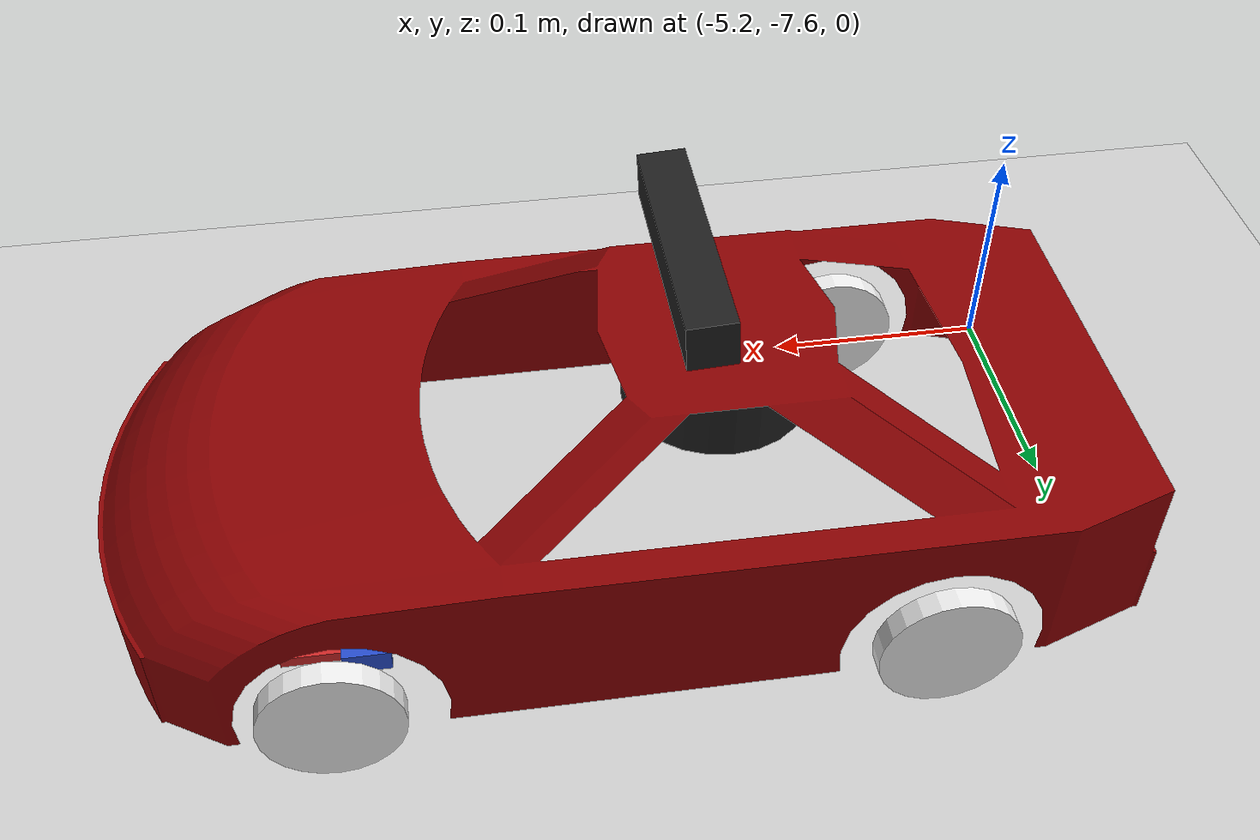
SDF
<?xml version="1.0" ?>
<sdf version="1.5">
  <world name="default">
    <!-- A global light source -->
    <include>
      <uri>model://sun</uri>
    </include>
    <!-- A ground plane -->
    <include>
      <uri>model://ground_plane</uri>
      <pose> 0 0 -0.05 0 0 0 </pose>
    </include>

    <include>
      <uri>model://AutoNOMOS_mini_ideal</uri>
      <pose> -5 -7.5 0 0 0 0 </pose>
    </include>

  </world>
</sdf>

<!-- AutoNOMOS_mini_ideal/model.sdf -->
<sdf version='1.3'>
  <model name='AutoNOMOS_mini_ideal'>
    <static>true</static>
    <link name='base_link'>
    </link>

    <link name="body">
      	<inertial>
	        <mass>6</mass>
	        <inertia>
	          <ixx>0.0067</ixx>
	          <ixy>0.000000</ixy>
	          <ixz>0.00088</ixz>
	          <iyy>0.07846</iyy>
	          <iyz>0.000000</iyz>
	          <izz>0.08387</izz>
	        </inertia>
      	</inertial>

	    <visual name="visual_body">
	      	<geometry>
				<mesh><uri>model://AutoNOMOS_mini/meshes/autonomos.dae</uri></mesh>
	      	</geometry>
	    </visual>

	    <collision name="collision_body">
	    	<geometry>
				<mesh><uri>model://AutoNOMOS_mini/meshes/autonomos.dae</uri></mesh>
	      	</geometry>
	    </collision>

	    <sensor name="imu_sensor" type="imu">
	      <always_on>true</always_on>
	      <update_rate>50</update_rate>
	      <visualize>true</visualize>
	      <topic>__default_topic__</topic>
	      <plugin filename="libgazebo_ros_imu_sensor.so" name="imu_plugin">
	        <topicName>imu</topicName>
	        <updateRateHZ>10.0</updateRateHZ>
	        <gaussianNoise>0.0</gaussianNoise>
	        <xyzOffset>0 0 0</xyzOffset>
	        <rpyOffset>0 0 0</rpyOffset>
	        <frameName>imu_link</frameName>
	      </plugin>
	      <pose>0 0 0 0 0 0</pose>
	    </sensor>
    </link>

    <joint name="base_link_to_body" type="fixed">
    	<pose>0.000000 0.000000 0.000000 0.000000 0.000000 0.000000</pose>
    	<parent>base_link</parent>
		<child>body </child>
    </joint>

    <link name='back_left_wheel_link'>
      <pose>-0.125000 0.100000 0.0100000 1.570800 0.000000 0.000000</pose>
      <inertial>
        <mass>0.010000</mass>
        <inertia>
          <ixx>0.010000</ixx>
          <ixy>0.000000</ixy>
          <ixz>0.000000</ixz>
          <iyy>0.010000</iyy>
          <iyz>0.000000</iyz>
          <izz>0.010000</izz>
        </inertia>
      </inertial>
      <collision name='back_left_wheel_link_geom'>
        <geometry>
          <cylinder>
            <length>0.01000</length>
            <radius>0.03000</radius>
          </cylinder>
        </geometry>
      </collision>
      <visual name='back_left_wheel_link_visual'>
        <geometry>
          <cylinder>
            <length>0.01000</length>
            <radius>0.03000</radius>
          </cylinder>
        </geometry>
        <material>
          <script>
            <name>Gazebo/White</name>
          </script>
        </material>
      </visual>
    </link>

    <joint name='back_left_wheel_joint' type='revolute'>
      <child>back_left_wheel_link</child>
      <parent>base_link</parent>
      <axis>
        <xyz>0.000000 1.000000 0.000000</xyz>
        <limit>
          <lower>-10000000000000000.000000</lower>
          <upper>10000000000000000.000000</upper>
        </limit>
      </axis>
    </joint>

    <link name='back_right_wheel_link'>
      <pose>-0.125000 -0.100000 0.0100000 1.570800 0.000000 0.000000</pose>
      <inertial>
        <mass>0.010000</mass>
        <inertia>
          <ixx>0.010000</ixx>
          <ixy>0.000000</ixy>
          <ixz>0.000000</ixz>
          <iyy>0.010000</iyy>
          <iyz>0.000000</iyz>
          <izz>0.010000</izz>
        </inertia>
      </inertial>
      <collision name='back_right_wheel_link_geom'>
        <geometry>
          <cylinder>
            <length>0.01000</length>
            <radius>0.030000</radius>
          </cylinder>
        </geometry>
      </collision>
      <visual name='back_right_wheel_link_visual'>
        <geometry>
          <cylinder>
            <length>0.01000</length>
            <radius>0.030000</radius>
          </cylinder>
        </geometry>
        <material>
          <script>
            <name>Gazebo/White</name>
          </script>
        </material>
      </visual>
    </link>

    <joint name='back_right_wheel_joint' type='revolute'>
      <child>back_right_wheel_link</child>
      <parent>base_link</parent>
      <axis>
        <xyz>0.000000 1.000000 0.000000</xyz>
        <limit>
          <lower>-10000000000000000.000000</lower>
          <upper>10000000000000000.000000</upper>
        </limit>
      </axis>
    </joint>

    <link name='front_left_bar_link'>
      <pose>0.125000 0.060000 0.0100000 0.000000 0.000000 0.000000</pose>
      <inertial>
        <mass>0.010000</mass>
        <inertia>
          <ixx>0.010000</ixx>
          <ixy>0.000000</ixy>
          <ixz>0.000000</ixz>
          <iyy>0.010000</iyy>
          <iyz>0.000000</iyz>
          <izz>0.010000</izz>
        </inertia>
      </inertial>
      <collision name='front_left_bar_link_geom'>
        <geometry>
          <box>
            <size>0.040000 0.020000 0.005000</size>
          </box>
        </geometry>
      </collision>
      <visual name='front_left_bar_link_visual'>
        <geometry>
          <box>
            <size>0.040000 0.020000 0.005000</size>
          </box>
        </geometry>
        <material>
          <script>
            <name>Gazebo/Red</name>
          </script>
        </material>
      </visual>
    </link>

    <joint name='front_left_bar_joint' type='revolute'>
      <child>front_left_bar_link</child>
      <parent>base_link</parent>
      <axis>
        <xyz>0.000000 0.000000 1.000000</xyz>
        <limit>
          <lower>-0.500000</lower>
          <upper>0.500000</upper>
        </limit>
      </axis>
    </joint>

    <link name='front_left_wheel_link'>
      <pose>0.125000 0.100000 0.0100000 1.570800 0.000000 0.000000</pose>
      <inertial>
        <mass>0.010000</mass>
        <inertia>
          <ixx>0.010000</ixx>
          <ixy>0.000000</ixy>
          <ixz>0.000000</ixz>
          <iyy>0.010000</iyy>
          <iyz>0.000000</iyz>
          <izz>0.010000</izz>
        </inertia>
      </inertial>
      <collision name='front_left_wheel_link_geom'>
        <geometry>
          <cylinder>
            <length>0.01000</length>
            <radius>0.030000</radius>
          </cylinder>
        </geometry>
      </collision>
      <visual name='front_left_wheel_link_visual'>
        <geometry>
          <cylinder>
            <length>0.01000</length>
            <radius>0.030000</radius>
          </cylinder>
        </geometry>
        <material>
          <script>
            <name>Gazebo/White</name>
          </script>
        </material>
      </visual>
    </link>

    <joint name='front_left_wheel_joint' type='revolute'>
      <child>front_left_wheel_link</child>
      <parent>front_left_bar_link</parent>
      <axis>
        <xyz>0.000000 1.000000 0.000000</xyz>
        <limit>
          <lower>-10000000000000000.000000</lower>
          <upper>10000000000000000.000000</upper>
        </limit>
        <dynamics/>
      </axis>
    </joint>

    <link name='front_right_bar_link'>
      <pose>0.125000 -0.060000 0.0100000 0.000000 0.000000 0.000000</pose>
      <inertial>
        <mass>0.010000</mass>
        <inertia>
          <ixx>0.010000</ixx>
          <ixy>0.000000</ixy>
          <ixz>0.000000</ixz>
          <iyy>0.010000</iyy>
          <iyz>0.000000</iyz>
          <izz>0.010000</izz>
        </inertia>
      </inertial>
      <collision name='front_right_bar_link_geom'>
        <geometry>
          <box>
            <size>0.040000 0.020000 0.005000</size>
          </box>
        </geometry>
      </collision>
      <visual name='front_right_bar_link_visual'>
        <geometry>
          <box>
            <size>0.040000 0.020000 0.005000</size>
          </box>
        </geometry>
        <material>
          <script>
            <name>Gazebo/Red</name>
          </script>
        </material>
      </visual>
    </link>

    <joint name='front_right_bar_joint' type='revolute'>
      <child>front_right_bar_link</child>
      <parent>base_link</parent>
      <axis>
        <xyz>0.000000 0.000000 1.000000</xyz>
        <limit>
          <lower>-0.500000</lower>
          <upper>0.500000</upper>
        </limit>
        <dynamics/>
      </axis>
    </joint>

    <link name='front_right_wheel_link'>
      <pose>0.125000 -0.100000 0.0100000 1.570800 0.000000 0.000000</pose>
      <inertial>
        <mass>0.010000</mass>
        <inertia>
          <ixx>0.010000</ixx>
          <ixy>0.000000</ixy>
          <ixz>0.000000</ixz>
          <iyy>0.010000</iyy>
          <iyz>0.000000</iyz>
          <izz>0.010000</izz>
        </inertia>
      </inertial>
      <collision name='front_right_wheel_link_geom'>
        <geometry>
          <cylinder>
            <length>0.01000</length>
            <radius>0.030000</radius>
          </cylinder>
        </geometry>
      </collision>
      <visual name='front_right_wheel_link_visual'>
        <geometry>
          <cylinder>
            <length>0.01000</length>
            <radius>0.030000</radius>
          </cylinder>
        </geometry>
        <material>
          <script>
            <name>Gazebo/White</name>
          </script>
        </material>
      </visual>
    </link>

    <joint name='front_right_wheel_joint' type='revolute'>
      <child>front_right_wheel_link</child>
      <parent>front_right_bar_link</parent>
      <axis>
        <xyz>0.000000 1.000000 0.000000</xyz>
        <limit>
          <lower>-10000000000000000.000000</lower>
          <upper>10000000000000000.000000</upper>
        </limit>
        <dynamics/>
      </axis>
    </joint>

    <link name='steer_link'>
      <pose>0.125000 0.000000 0.0100000 0.000000 0.000000 0.000000</pose>
      <inertial>
        <mass>0.010000</mass>
        <inertia>
          <ixx>0.010000</ixx>
          <ixy>0.000000</ixy>
          <ixz>0.000000</ixz>
          <iyy>0.010000</iyy>
          <iyz>0.000000</iyz>
          <izz>0.010000</izz>
        </inertia>
      </inertial>
      <collision name='steer_link_geom'>
        <geometry>
          <box>
            <size>0.040000 0.020000 0.005000</size>
          </box>
        </geometry>
      </collision>
      <visual name='steer_link_visual'>
        <geometry>
          <box>
            <size>0.040000 0.020000 0.005000</size>
          </box>
        </geometry>
        <material>
          <script>
            <name>Gazebo/Red</name>
          </script>
        </material>
      </visual>
    </link>

    <joint name='steer_joint' type='revolute'>
      <child>steer_link</child>
      <parent>base_link</parent>
      <axis>
        <xyz>0.000000 0.000000 1.000000</xyz>
        <limit>
          <lower>-0.500000</lower>
          <upper>0.500000</upper>
        </limit>
        <dynamics/>
      </axis>
    </joint>

    <link name='ackermann_bar_link'>
      <pose>0.11000 0.000000 0.0100000 0.000000 0.000000 0.000000</pose>
      <inertial>
        <mass>0.010000</mass>
        <inertia>
          <ixx>0.010000</ixx>
          <ixy>0.000000</ixy>
          <ixz>0.000000</ixz>
          <iyy>0.010000</iyy>
          <iyz>0.000000</iyz>
          <izz>0.010000</izz>
        </inertia>
      </inertial>
      <collision name='ackermann_bar_link_geom'>
        <geometry>
          <box>
            <size>0.020000 0.150000 0.010000</size>
          </box>
        </geometry>
      </collision>
      <visual name='ackermann_bar_link_visual'>
        <geometry>
          <box>
            <size>0.020000 0.150000 0.010000</size>
          </box>
        </geometry>
        <material>
          <script>
            <name>Gazebo/Blue</name>
          </script>
        </material>
      </visual>
    </link>

    <joint name='ackermann_joint' type='revolute'>
      <child>ackermann_bar_link</child>
      <parent>steer_link</parent>
      <axis>
        <xyz>0.000000 0.000000 1.000000</xyz>
        <limit>
          <lower>-0.500000</lower>
          <upper>0.500000</upper>
        </limit>
        <dynamics/>
      </axis>
    </joint>

    <joint name='ackermann_left_bar_joint' type='revolute'>
      <parent>front_left_bar_link</parent>
      <child>ackermann_bar_link</child>
      <axis>
        <xyz>0.000000 0.000000 1.000000</xyz>
        <limit>
          <lower>-10000000000000000.000000</lower>
          <upper>10000000000000000.000000</upper>
        </limit>
        <dynamics/>
      </axis>
      <pose>0.000000 0.060000 0.000000 0.000000 0.000000 0.000000</pose>
    </joint>

    <joint name='ackermann_right_bar_joint' type='revolute'>
      <parent>front_right_bar_link</parent>
      <child>ackermann_bar_link</child>
      <axis>
        <xyz>0.000000 0.000000 1.000000</xyz>
        <limit>
          <lower>-10000000000000000.000000</lower>
          <upper>10000000000000000.000000</upper>
        </limit>
        <dynamics/>
      </axis>
      <pose>0.000000 -0.060000 0.000000 0.000000 0.000000 0.000000</pose>
    </joint>

    <!-- laser link -->
  	<link name="laser_link">
	  	<pose>-0.045 0.00000 0.085 0.000000 0.000000 0.000000</pose>
	    <inertial>
	    	<mass>0.1197</mass>
	        <inertia>
	          <ixx>0.010000</ixx>
	          <ixy>0.000000</ixy>
	          <ixz>0.000000</ixz>
	          <iyy>0.010000</iyy>
	          <iyz>0.000000</iyz>
	          <izz>0.010000</izz>
	        </inertia>
	    </inertial>
	    <collision name="collision_laser_link">
	    	<geometry>
	          <cylinder>
	            <length>0.02500</length>
	            <radius>0.040000</radius>
	          </cylinder>
	        </geometry>
	    </collision>
	    <visual name="visual_laser_link">
	    	<geometry>
	          <cylinder>
	            <length>0.02500</length>
	            <radius>0.040000</radius>
	          </cylinder>
	        </geometry>
	        <material>
	          <script>
	            <name>Gazebo/Black</name>
	          </script>
	        </material>
	    </visual>

	    <sensor name="laser" type="ray">
	        <pose>0.0 0.00000 0.0 0.000000 0.000000 0.000000</pose>
	        <ray>
	          <scan>
	            <horizontal>
	              <samples>360</samples>
	              <resolution>1</resolution>
	              <min_angle>0</min_angle>
	              <max_angle>6.28318530718</max_angle>
	            </horizontal>
	          </scan>
	          <range>
	            <min>0.08</min>
	            <max>6</max>
	            <resolution>0.01</resolution>
	          </range>
	        </ray>
	        <plugin name="laser" filename="libgazebo_ros_laser.so">
	          <robotNamespace></robotNamespace>
	          <topicName>/scan</topicName>
	          <frameName>map</frameName>
	        </plugin>
	        <always_on>1</always_on>
	        <update_rate>30</update_rate>
	        <visualize>false</visualize>
	    </sensor>
  	</link>

	<joint name="laser_joint" type="fixed">
	    <child>laser_link</child>
	    <parent>base_link</parent>
	    <axis>
	        <xyz>0.000000 0.000000 1.000000</xyz>
	    </axis>
	</joint>

	<!-- laser link -->
  	<link name="camera_link">
	  	<pose>-0.03 0.00000 0.145 0.0 0.06 0.0</pose>
	    <inertial>
	    	<mass>0.1197</mass>
	        <inertia>
	          <ixx>0.010000</ixx>
	          <ixy>0.000000</ixy>
	          <ixz>0.000000</ixz>
	          <iyy>0.010000</iyy>
	          <iyz>0.000000</iyz>
	          <izz>0.010000</izz>
	        </inertia>
	    </inertial>
	    <collision name="collision_camera_link">
	    	<geometry>
	          <box>
	            <size>0.02 0.11 0.02</size>
	          </box>
	        </geometry>
	    </collision>
	    <visual name="visual_camera_link">
	    	<geometry>
	          <box>
	            <size>0.02 0.11 0.02</size>
	          </box>
	        </geometry>
	        <material>
	          <script>
	            <name>Gazebo/Black</name>
	          </script>
	        </material>
	    </visual>

	    <sensor name="camera" type="depth">
	        <update_rate>30</update_rate>
	        <visualize>true</visualize>
	        <always_on>1</always_on>
	        <camera>
	          <horizontal_fov>1.047198</horizontal_fov>
	          <image>
	            <width>640</width>
	            <height>480</height>
	            <format>R8G8B8</format>
	          </image>
	          <depth_camera>
	            <output>points</output>
	          </depth_camera>
	    	</camera>

	    	<plugin name="${link_name}_controller" filename="libgazebo_ros_openni_kinect.so">
		        <baseline>0.2</baseline>
		        <alwaysOn>true</alwaysOn>
		        <updateRate>30</updateRate>
		        <cameraName>app</cameraName>
		        <imageTopicName>camera/rgb/image_raw</imageTopicName>
		        <cameraInfoTopicName>camera/rgb/camera_info</cameraInfoTopicName>
		        <depthImageTopicName>camera/depth/image_raw</depthImageTopicName>
		        <depthImageCameraInfoTopicName>camera/depth/camera_info</depthImageCameraInfoTopicName>
		        <pointCloudTopicName>camera/points</pointCloudTopicName>
		        <frameName>map</frameName>
		        <pointCloudCutoffMax>0.5</pointCloudCutoffMax>
		        <pointCloudCutoff>0.5</pointCloudCutoff>
		        <CxPrime>0</CxPrime>
		        <Cx>0</Cx>
		        <Cy>0</Cy>
		        <focalLength>0</focalLength>
		        <hackBaseline>0</hackBaseline>
		    </plugin>
	    </sensor>
  	</link>

	<joint name="camera_joint" type="fixed">
	    <child>camera_link</child>
	    <parent>base_link</parent>
	    <axis>
	        <xyz>0.000000 0.000000 1.000000</xyz>
	    </axis>
	</joint>

    <plugin name="test_control" filename="libautonomos_ideal_plugin.so">
      <debug>True</debug>
    </plugin>
    <plugin name="model_plotting_plugin" filename="libplot_tree_plugin.so"/>

  </model>
</sdf>
